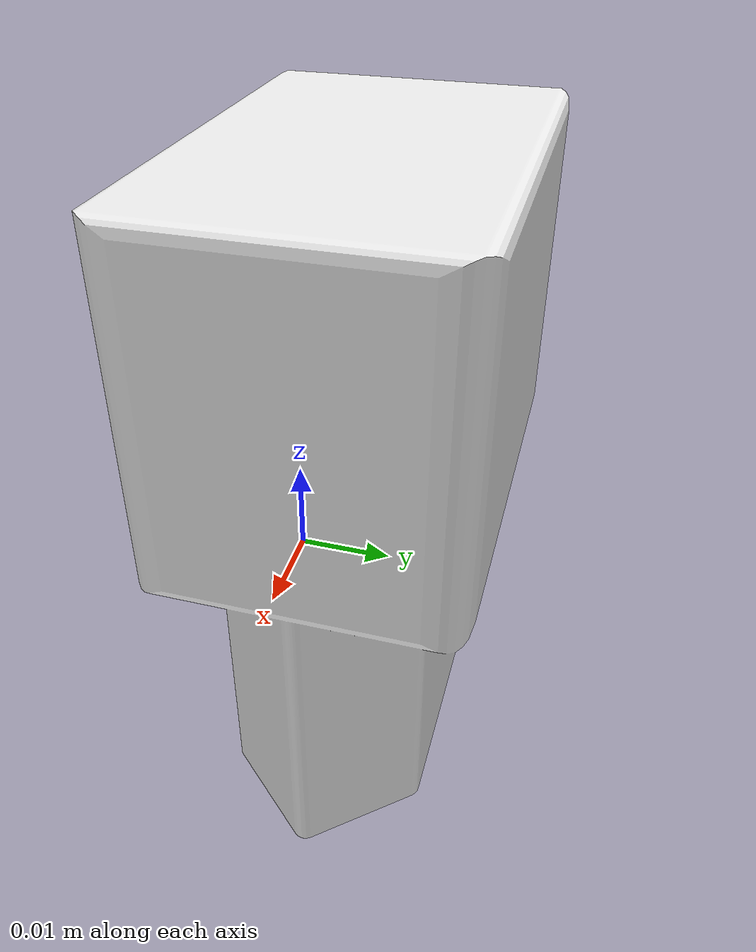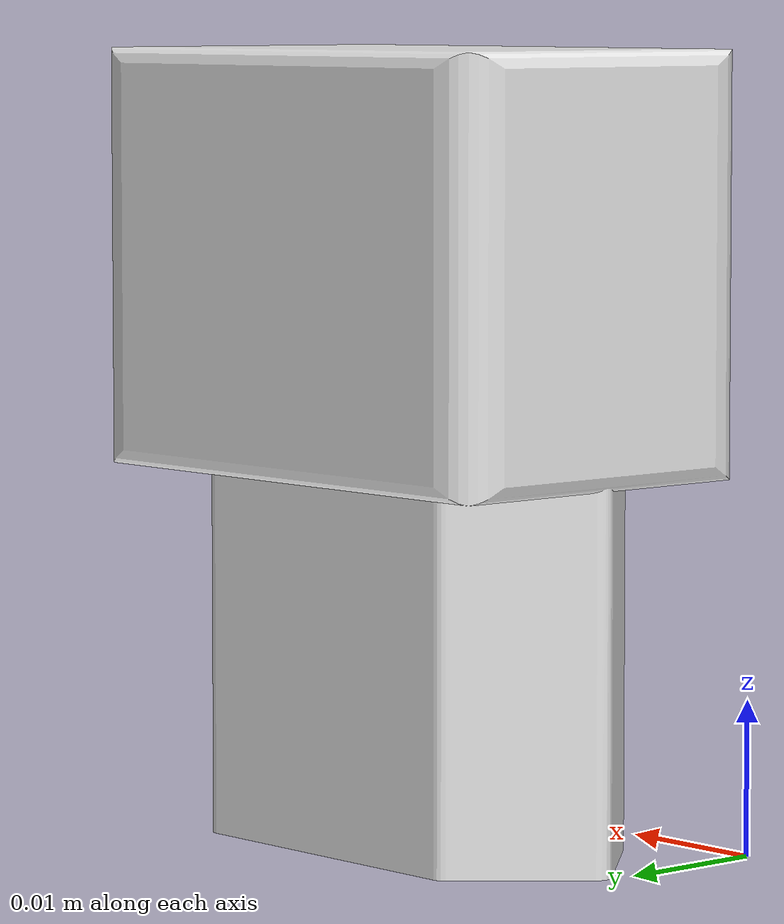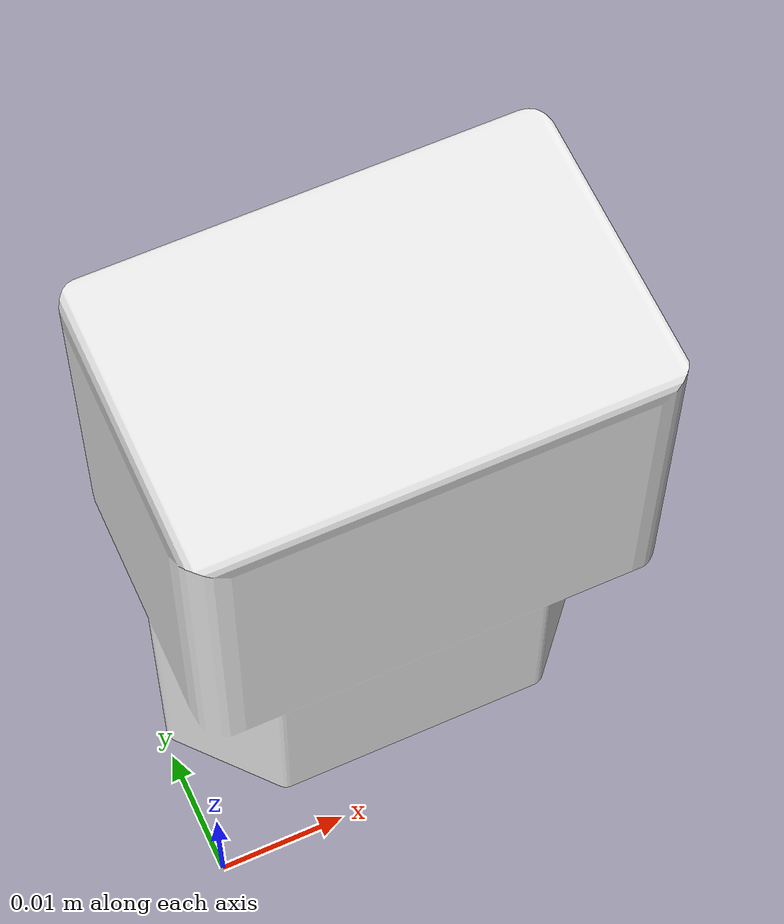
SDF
<?xml version='1.0'?>
<sdf version='1.6'>
  <model name='chargeur_0'>
    <link name='chargeur'>
      <pose frame=''>0 0 0 0 -0 0</pose>
      <inertial>
        <pose frame=''>0.018 0.012 0.0255 0.0 -0 0</pose>
        <mass>0.004</mass>
        <inertia>
          <ixx>1.06e-06</ixx>
          <ixy>0</ixy>
          <ixz>0</ixz>
          <iyy>1.30e-06</iyy>
          <iyz>0</iyz>
          <izz>0.62e-06</izz>
        </inertia>
      </inertial>
      <self_collide>0</self_collide>
      <enable_wind>0</enable_wind>
      <kinematic>0</kinematic>
      <gravity>1</gravity>
      <visual name='chargeur_visual'>
        <pose frame=''>0 0 0 0 -0 0</pose>
        <geometry>
          <mesh>
            <scale>0.01 0.01 0.01</scale>
            <uri>/home/rhosane/.gazebo/models/chargeur/meshes/chargeur.stl</uri>
          </mesh>
        </geometry>
        <material>
          <script>
            <uri>file://media/materials/scripts/gazebo.material</uri>
            <name>Gazebo/White</name>
          </script>
          <shader type='pixel'>
            <normal_map>__default__</normal_map>
          </shader>
          <ambient>0.8 0.8 0.8 1</ambient>
          <diffuse>1 1 1 1</diffuse>
          <specular>0 0 0 1</specular>
          <emissive>0.3 0.3 0.3 1</emissive>
        </material>
        <transparency>0</transparency>
        <cast_shadows>1</cast_shadows>
      </visual>
      <collision name='chargeur_collision'>
        <laser_retro>0</laser_retro>
        <max_contacts>10</max_contacts>
        <pose frame=''>0.018 0.012 0.0255 0 -0 0</pose>
        <geometry>
          <box>
            <size>0.036 0.024 0.051</size>
          </box>
        </geometry>
        <surface>
          <friction>
            <ode>
              <mu>1000</mu>
              <mu2>500</mu2>
              <fdir1>0 0 1</fdir1>
              <slip1>0</slip1>
              <slip2>0</slip2>
            </ode>
            <torsional>
              <coefficient>1</coefficient>
              <patch_radius>0</patch_radius>
              <surface_radius>0</surface_radius>
              <use_patch_radius>1</use_patch_radius>
              <ode>
                <slip>0</slip>
              </ode>
            </torsional>
          </friction>
          <bounce>
            <restitution_coefficient>0</restitution_coefficient>
            <threshold>1e+06</threshold>
          </bounce>
          <contact>
            <collide_without_contact>0</collide_without_contact>
            <collide_without_contact_bitmask>1</collide_without_contact_bitmask>
            <collide_bitmask>1</collide_bitmask>
            <ode>
              <soft_cfm>0</soft_cfm>
              <soft_erp>0.2</soft_erp>
              <kp>100000</kp>
              <kd>10</kd>
              <max_vel>2</max_vel>
              <min_depth>0.0001</min_depth>
            </ode>
            <bullet>
              <split_impulse>1</split_impulse>
              <split_impulse_penetration_threshold>-0.01</split_impulse_penetration_threshold>
              <soft_cfm>0</soft_cfm>
              <soft_erp>0.2</soft_erp>
              <kp>100000</kp>
              <kd>10</kd>
            </bullet>
          </contact>
        </surface>
      </collision>
    </link>
    <static>0</static>
    <allow_auto_disable>1</allow_auto_disable>
  </model>
</sdf>
